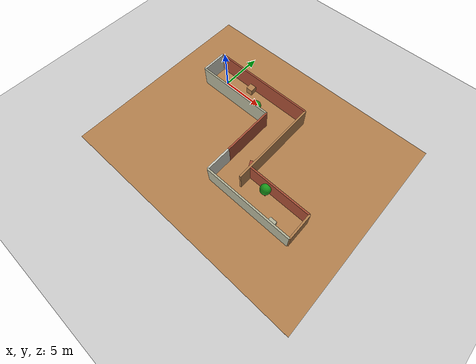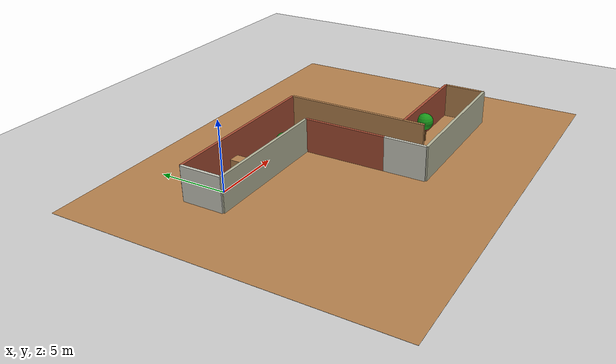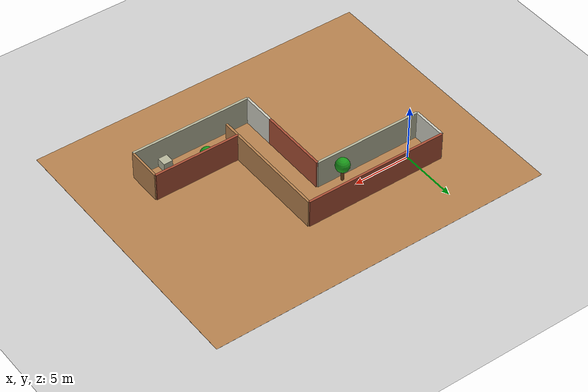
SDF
<?xml version="1.0" ?>
<sdf version="1.6">
  <world name="maze_room">
    <include><uri>model://sun</uri></include>
    <include><uri>model://ground_plane</uri></include>

    <!-- Dokulu zemin -->
    <model name="floor">
      <static>true</static>
      <link name="link">
        <pose>8 -4.5 0.005 0 0 0</pose>
        <visual name="v">
          <geometry><box><size>30 24 0.01</size></box></geometry>
          <material><script>
            <uri>file://media/materials/scripts/gazebo.material</uri>
            <name>Gazebo/Wood</name>
          </script></material>
        </visual>
      </link>
    </model>

    <!-- Labirent koridoru (duz -> sag -> sol) -->
    <model name="maze">
      <static>true</static>

      <!-- Segment 1: duz (+X) -->
      <link name="N1"><pose>4.25 1.5 1.25 0 0 0</pose>
        <collision name="c"><geometry><box><size>12.5 0.2 2.5</size></box></geometry></collision>
        <visual name="v"><geometry><box><size>12.5 0.2 2.5</size></box></geometry>
          <material><script><uri>file://media/materials/scripts/gazebo.material</uri><name>Gazebo/Bricks</name></script></material></visual></link>
      <link name="S1"><pose>2.75 -1.5 1.25 0 0 0</pose>
        <collision name="c"><geometry><box><size>9.5 0.2 2.5</size></box></geometry></collision>
        <visual name="v"><geometry><box><size>9.5 0.2 2.5</size></box></geometry>
          <material><script><uri>file://media/materials/scripts/gazebo.material</uri><name>Gazebo/Residential</name></script></material></visual></link>
      <link name="WEST"><pose>-2 0 1.25 0 0 0</pose>
        <collision name="c"><geometry><box><size>0.2 3.0 2.5</size></box></geometry></collision>
        <visual name="v"><geometry><box><size>0.2 3.0 2.5</size></box></geometry>
          <material><script><uri>file://media/materials/scripts/gazebo.material</uri><name>Gazebo/PaintedWall</name></script></material></visual></link>

      <!-- Segment 2: saga don (-Y) -->
      <link name="E2"><pose>10.5 -3.75 1.25 0 0 0</pose>
        <collision name="c"><geometry><box><size>0.2 10.5 2.5</size></box></geometry></collision>
        <visual name="v"><geometry><box><size>0.2 10.5 2.5</size></box></geometry>
          <material><script><uri>file://media/materials/scripts/gazebo.material</uri><name>Gazebo/Wood</name></script></material></visual></link>
      <link name="W2"><pose>7.5 -4.5 1.25 0 0 0</pose>
        <collision name="c"><geometry><box><size>0.2 6.0 2.5</size></box></geometry></collision>
        <visual name="v"><geometry><box><size>0.2 6.0 2.5</size></box></geometry>
          <material><script><uri>file://media/materials/scripts/gazebo.material</uri><name>Gazebo/Bricks</name></script></material></visual></link>

      <!-- Segment 3: sola don (+X) -->
      <link name="S3"><pose>12.75 -10.5 1.25 0 0 0</pose>
        <collision name="c"><geometry><box><size>10.5 0.2 2.5</size></box></geometry></collision>
        <visual name="v"><geometry><box><size>10.5 0.2 2.5</size></box></geometry>
          <material><script><uri>file://media/materials/scripts/gazebo.material</uri><name>Gazebo/Residential</name></script></material></visual></link>
      <link name="N3"><pose>14.25 -7.5 1.25 0 0 0</pose>
        <collision name="c"><geometry><box><size>7.5 0.2 2.5</size></box></geometry></collision>
        <visual name="v"><geometry><box><size>7.5 0.2 2.5</size></box></geometry>
          <material><script><uri>file://media/materials/scripts/gazebo.material</uri><name>Gazebo/Bricks</name></script></material></visual></link>
      <link name="W3"><pose>7.5 -9 1.25 0 0 0</pose>
        <collision name="c"><geometry><box><size>0.2 3.0 2.5</size></box></geometry></collision>
        <visual name="v"><geometry><box><size>0.2 3.0 2.5</size></box></geometry>
          <material><script><uri>file://media/materials/scripts/gazebo.material</uri><name>Gazebo/PaintedWall</name></script></material></visual></link>
      <link name="EAST"><pose>18 -9 1.25 0 0 0</pose>
        <collision name="c"><geometry><box><size>0.2 3.0 2.5</size></box></geometry></collision>
        <visual name="v"><geometry><box><size>0.2 3.0 2.5</size></box></geometry>
          <material><script><uri>file://media/materials/scripts/gazebo.material</uri><name>Gazebo/Wood</name></script></material></visual></link>
    </model>

    <!-- Dokulu sandiklar (duvar kenarlarinda, yolu kapatmaz) -->
    <model name="crate1"><static>true</static><link name="l"><pose>3 1.0 0.4 0 0 0</pose>
      <collision name="c"><geometry><box><size>0.8 0.8 0.8</size></box></geometry></collision>
      <visual name="v"><geometry><box><size>0.8 0.8 0.8</size></box></geometry>
        <material><script><uri>file://media/materials/scripts/gazebo.material</uri><name>Gazebo/Wood</name></script></material></visual></link></model>
    <model name="crate2"><static>true</static><link name="l"><pose>10.0 -6.5 0.4 0 0 0.5</pose>
      <collision name="c"><geometry><box><size>0.8 0.8 0.8</size></box></geometry></collision>
      <visual name="v"><geometry><box><size>0.8 0.8 0.8</size></box></geometry>
        <material><script><uri>file://media/materials/scripts/gazebo.material</uri><name>Gazebo/Bricks</name></script></material></visual></link></model>
    <model name="crate3"><static>true</static><link name="l"><pose>15.5 -10.0 0.4 0 0 0</pose>
      <collision name="c"><geometry><box><size>0.8 0.8 0.8</size></box></geometry></collision>
      <visual name="v"><geometry><box><size>0.8 0.8 0.8</size></box></geometry>
        <material><script><uri>file://media/materials/scripts/gazebo.material</uri><name>Gazebo/Residential</name></script></material></visual></link></model>

    <!-- Basit agaclar (govde + yaprak) -->
    <model name="tree1"><static>true</static>
      <link name="trunk"><pose>5.5 -1.0 0.6 0 0 0</pose>
        <visual name="v"><geometry><cylinder><radius>0.12</radius><length>1.2</length></cylinder></geometry>
          <material><ambient>0.4 0.25 0.1 1</ambient><diffuse>0.4 0.25 0.1 1</diffuse></material></visual></link>
      <link name="leaves"><pose>5.5 -1.0 1.5 0 0 0</pose>
        <visual name="v"><geometry><sphere><radius>0.6</radius></sphere></geometry>
          <material><ambient>0.1 0.5 0.1 1</ambient><diffuse>0.1 0.6 0.1 1</diffuse></material></visual></link></model>
    <model name="tree2"><static>true</static>
      <link name="trunk"><pose>13.0 -8.0 0.6 0 0 0</pose>
        <visual name="v"><geometry><cylinder><radius>0.12</radius><length>1.2</length></cylinder></geometry>
          <material><ambient>0.4 0.25 0.1 1</ambient><diffuse>0.4 0.25 0.1 1</diffuse></material></visual></link>
      <link name="leaves"><pose>13.0 -8.0 1.5 0 0 0</pose>
        <visual name="v"><geometry><sphere><radius>0.6</radius></sphere></geometry>
          <material><ambient>0.1 0.5 0.1 1</ambient><diffuse>0.1 0.6 0.1 1</diffuse></material></visual></link></model>

  </world>
</sdf>
